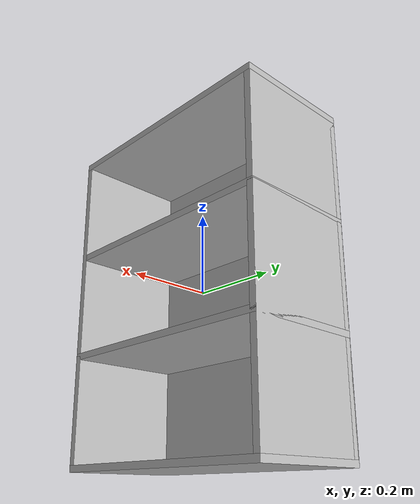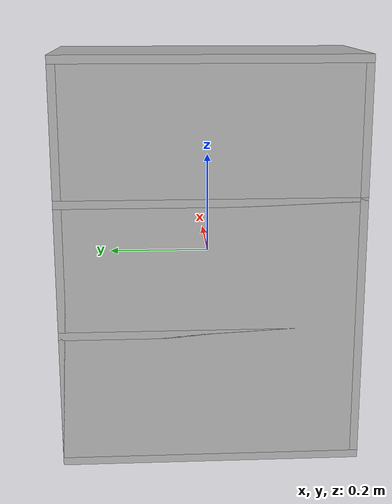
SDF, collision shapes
<?xml version="1.0"?>
<sdf version="1.7">
  <model name="shelves">
    <link name="shelves_body">
      <visual name="shelves_visual">
        <pose> 0 0 0 0 0 3.14159</pose>
        <geometry>
          <mesh>
            <uri>package://drake_models/manipulation_station/assets/shelves.gltf</uri>
          </mesh>
        </geometry>
      </visual>
      <collision name="right_wall">
        <pose> 0 0.292 0 0 0 0</pose>
        <geometry>
          <box>
            <size>0.3 0.016 0.783</size>
          </box>
        </geometry>
      </collision>
      <collision name="left_wall">
        <pose> 0 -0.292 0 0 0 0</pose>
        <geometry>
          <box>
            <size>0.3 0.016 0.783</size>
          </box>
        </geometry>
      </collision>
      <collision name="top">
        <pose> 0 0 0.3995 0 0 0</pose>
        <geometry>
          <box>
            <size>0.3 0.6 0.016</size>
          </box>
        </geometry>
      </collision>
      <collision name="shelf_lower">
        <pose> 0 0 -0.13115 0 0 0</pose>
        <geometry>
          <box>
            <size>0.3 0.6 0.016</size>
          </box>
        </geometry>
      </collision>
      <collision name="shelf_upper">
        <pose> 0 0 0.13115 0 0 0</pose>
        <geometry>
          <box>
            <size>0.3 0.6 0.016</size>
          </box>
        </geometry>
      </collision>
      <collision name="bottom">
        <pose> 0 0 -0.3995 0 0 0</pose>
        <geometry>
          <box>
            <size>0.3 0.6 0.016</size>
          </box>
        </geometry>
      </collision>
      <collision name="back">
        <pose> -0.142 0 0 0 0 0</pose>
        <geometry>
          <box>
            <size>0.016 0.6 0.783</size>
          </box>
        </geometry>
      </collision>
    </link>
  </model>
</sdf>
